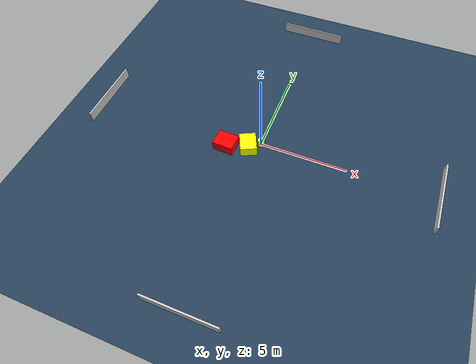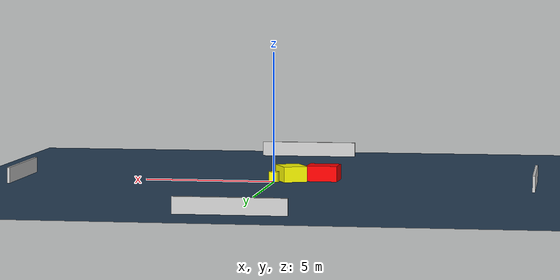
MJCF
<?xml version="1.0" ?>
<mujoco model="generated_environment">
  <option timestep="0.01" integrator="RK4" cone="elliptic"/>
  <default>
    <geom density="1"/>
  </default>
  <asset>
    <texture builtin="gradient" height="3072" name="skybox" rgb1="0.3 0.5 0.7" rgb2="0 0 0" type="skybox" width="512"/>
    <texture builtin="checker" height="300" name="groundplane" rgb1="0.2 0.3 0.4" rgb2="0.1 0.2 0.3" type="2d" width="300"/>
    <material name="groundplane" reflectance="0.2" texrepeat="5 5" texture="groundplane"/>
  </asset>
  <worldbody>
    <light dir="0 0 -1" directional="true" pos="0 0 1.5"/>
    <geom condim="3" friction="0.5 0.005 0.001" material="groundplane" name="floor" pos="0 0 0" size="0 0 0.05" type="plane"/>
    <body name="walls">
      <geom name="wall_1" condim="4" pos="-10.0 0.0 0.3" rgba="0.800000011920929 0.800000011920929 0.800000011920929 1.0" size="0.05 2.0 0.3" type="box"/>
      <geom name="wall_2" condim="4" pos="10.0 0.0 0.3" rgba="0.800000011920929 0.800000011920929 0.800000011920929 1.0" size="0.05 2.0 0.3" type="box"/>
      <geom name="wall_3" condim="4" pos="0.0 -10.0 0.3" rgba="0.800000011920929 0.800000011920929 0.800000011920929 1.0" size="2.0 0.05 0.3" type="box"/>
      <geom name="wall_4" condim="4" pos="0.0 10.0 0.3" rgba="0.800000011920929 0.800000011920929 0.800000011920929 1.0" size="2.0 0.05 0.3" type="box"/>
    </body>
    <body name="robot">
      <joint name="joint_x" type="slide" pos="0 0 0" axis="1 0 0"/>
      <joint name="joint_y" type="slide" pos="0 0 0" axis="0 1 0"/>
      <geom name="robot" type="cylinder" pos="0.0 0.0 0.2" size="0.2 0.2 0.0" mass="5.0" friction="1.0 0.005 0.0001" condim="4" rgba="1.0 1.0 0.0 1.0"/>
    </body>
    <body name="obstacle_1_movable">
      <geom name="obstacle_1_movable" condim="4" pos="-0.6089766048039149 -0.46255361629322866 0.3" euler="0 0 115.47701171335784" friction="0.0 0.005 0.001" rgba="1.0 1.0 0.0 1.0" size="0.5576712926212875 0.4672862090680489 0.3" type="box" mass="0.1"/>
      <joint type="free"/>
    </body>
    <body name="obstacle_2_static">
      <geom name="obstacle_2_static" condim="4" pos="-1.8248104112364556 -0.7980821710286801 0.3" euler="0 0 87.26690306314886" friction="0.0 0.005 0.001" rgba="1.0 0.0 0.0 1.0" size="0.48718388321548295 0.5983575547384955 0.3" type="box"/>
    </body>
  </worldbody>
  <actuator>
    <motor name="actuator_x" joint="joint_x" gear="1" ctrlrange="-1 1"/>
    <motor name="actuator_y" joint="joint_y" gear="1" ctrlrange="-1 1"/>
  </actuator>
</mujoco>
